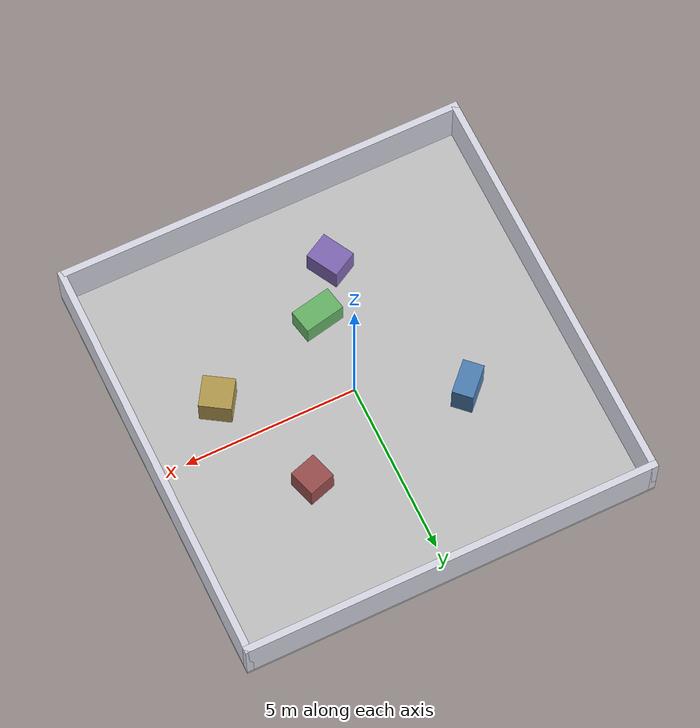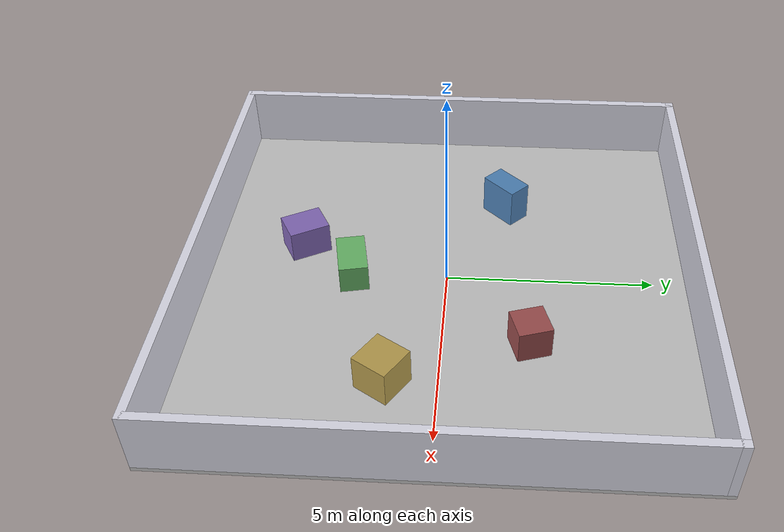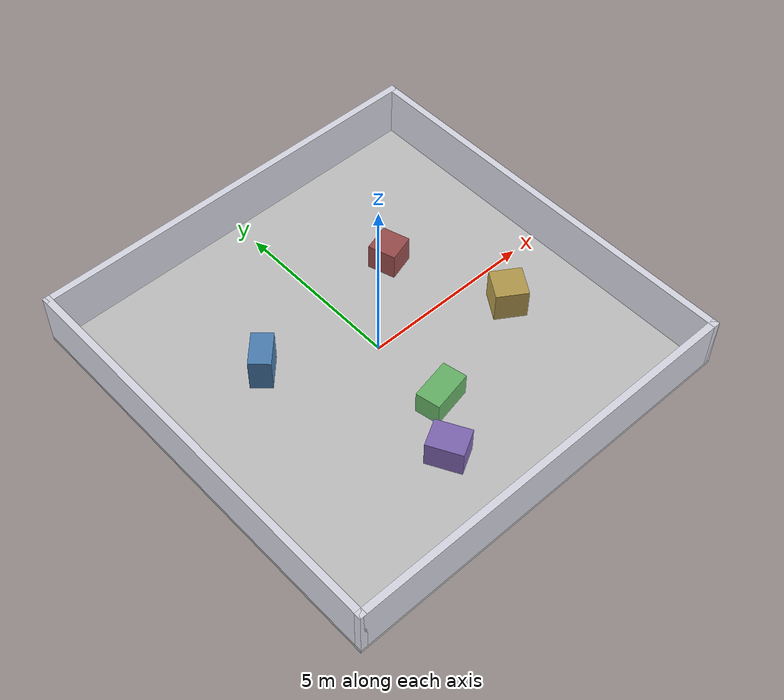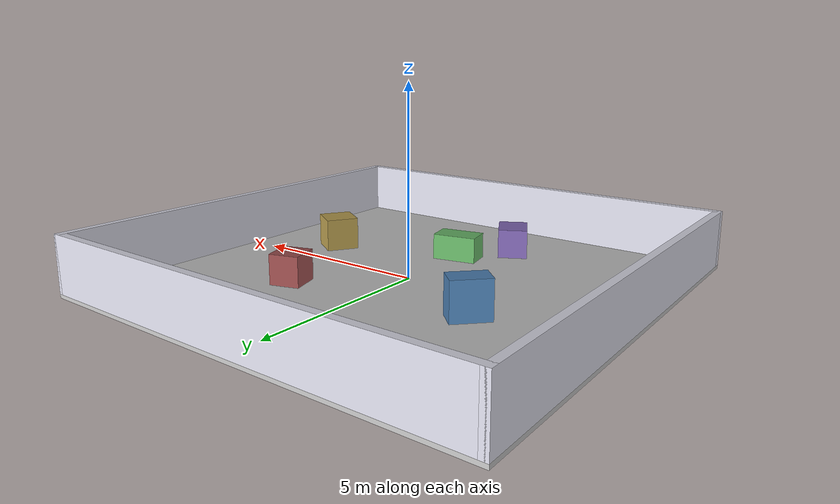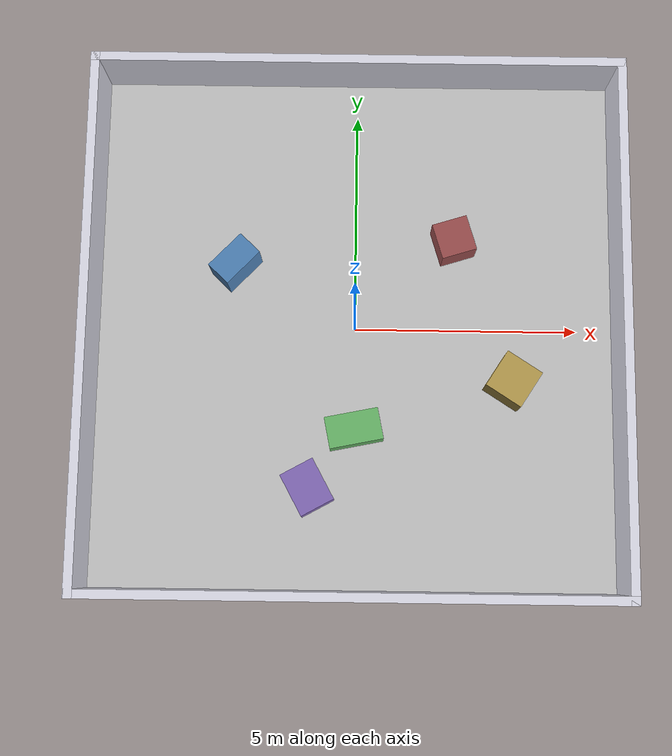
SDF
<?xml version="1.0" ?>
<sdf version="1.6">
  <world name="warehouse_boxes">

    <include>
      <uri>model://sun</uri>
    </include>

    <scene>
      <ambient>0.8 0.8 0.8 1</ambient>
      <background>0.95 0.95 0.95 1</background>
      <shadows>true</shadows>
    </scene>

    <physics type="ode">
      <max_step_size>0.001</max_step_size>
      <real_time_update_rate>1000</real_time_update_rate>
    </physics>

    <!-- floor -->
    <model name="floor">
      <static>true</static>
      <link name="link">
        <collision name="collision">
          <geometry>
            <box><size>12 12 0.1</size></box>
          </geometry>
          <pose>0 0 -0.05 0 0 0</pose>
        </collision>
        <visual name="visual">
          <geometry>
            <box><size>12 12 0.1</size></box>
          </geometry>
          <pose>0 0 -0.05 0 0 0</pose>
          <material>
            <ambient>0.75 0.75 0.75 1</ambient>
            <diffuse>0.75 0.75 0.75 1</diffuse>
          </material>
        </visual>
      </link>
    </model>

    <!-- surrounding walls -->
    <model name="north_wall">
      <static>true</static>
      <pose>0 5.9 0.75 0 0 0</pose>
      <link name="link">
        <collision name="collision">
          <geometry><box><size>12 0.2 1.5</size></box></geometry>
        </collision>
        <visual name="visual">
          <geometry><box><size>12 0.2 1.5</size></box></geometry>
          <material>
            <ambient>0.85 0.85 0.9 1</ambient>
            <diffuse>0.85 0.85 0.9 1</diffuse>
          </material>
        </visual>
      </link>
    </model>

    <model name="south_wall">
      <static>true</static>
      <pose>0 -5.9 0.75 0 0 0</pose>
      <link name="link">
        <collision name="collision">
          <geometry><box><size>12 0.2 1.5</size></box></geometry>
        </collision>
        <visual name="visual">
          <geometry><box><size>12 0.2 1.5</size></box></geometry>
          <material>
            <ambient>0.85 0.85 0.9 1</ambient>
            <diffuse>0.85 0.85 0.9 1</diffuse>
          </material>
        </visual>
      </link>
    </model>

    <model name="east_wall">
      <static>true</static>
      <pose>5.9 0 0.75 0 0 1.5708</pose>
      <link name="link">
        <collision name="collision">
          <geometry><box><size>12 0.2 1.5</size></box></geometry>
        </collision>
        <visual name="visual">
          <geometry><box><size>12 0.2 1.5</size></box></geometry>
          <material>
            <ambient>0.85 0.85 0.9 1</ambient>
            <diffuse>0.85 0.85 0.9 1</diffuse>
          </material>
        </visual>
      </link>
    </model>

    <model name="west_wall">
      <static>true</static>
      <pose>-5.9 0 0.75 0 0 1.5708</pose>
      <link name="link">
        <collision name="collision">
          <geometry><box><size>12 0.2 1.5</size></box></geometry>
        </collision>
        <visual name="visual">
          <geometry><box><size>12 0.2 1.5</size></box></geometry>
          <material>
            <ambient>0.85 0.85 0.9 1</ambient>
            <diffuse>0.85 0.85 0.9 1</diffuse>
          </material>
        </visual>
      </link>
    </model>

    <!-- randomly placed boxes -->
    <model name="box_1">
      <static>true</static>
      <pose>2.2 2.0 0.4 0 0 0.3</pose>
      <link name="link">
        <collision name="collision">
          <geometry><box><size>0.8 0.8 0.8</size></box></geometry>
        </collision>
        <visual name="visual">
          <geometry><box><size>0.8 0.8 0.8</size></box></geometry>
          <material>
            <ambient>0.6 0.3 0.3 1</ambient>
            <diffuse>0.6 0.3 0.3 1</diffuse>
          </material>
        </visual>
      </link>
    </model>

    <model name="box_2">
      <static>true</static>
      <pose>-2.7 1.4 0.5 0 0 0.8</pose>
      <link name="link">
        <collision name="collision">
          <geometry><box><size>1.0 0.6 1.0</size></box></geometry>
        </collision>
        <visual name="visual">
          <geometry><box><size>1.0 0.6 1.0</size></box></geometry>
          <material>
            <ambient>0.3 0.5 0.7 1</ambient>
            <diffuse>0.3 0.5 0.7 1</diffuse>
          </material>
        </visual>
      </link>
    </model>

    <model name="box_3">
      <static>true</static>
      <pose>0.0 -2.3 0.35 0 0 0.2</pose>
      <link name="link">
        <collision name="collision">
          <geometry><box><size>1.2 0.7 0.7</size></box></geometry>
        </collision>
        <visual name="visual">
          <geometry><box><size>1.2 0.7 0.7</size></box></geometry>
          <material>
            <ambient>0.4 0.7 0.4 1</ambient>
            <diffuse>0.4 0.7 0.4 1</diffuse>
          </material>
        </visual>
      </link>
    </model>

    <model name="box_4">
      <static>true</static>
      <pose>3.5 -1.2 0.45 0 0 1.0</pose>
      <link name="link">
        <collision name="collision">
          <geometry><box><size>0.9 0.9 0.9</size></box></geometry>
        </collision>
        <visual name="visual">
          <geometry><box><size>0.9 0.9 0.9</size></box></geometry>
          <material>
            <ambient>0.7 0.6 0.3 1</ambient>
            <diffuse>0.7 0.6 0.3 1</diffuse>
          </material>
        </visual>
      </link>
    </model>

    <model name="box_5">
      <static>true</static>
      <pose>-1.0 -3.6 0.4 0 0 0.5</pose>
      <link name="link">
        <collision name="collision">
          <geometry><box><size>0.8 1.0 0.8</size></box></geometry>
        </collision>
        <visual name="visual">
          <geometry><box><size>0.8 1.0 0.8</size></box></geometry>
          <material>
            <ambient>0.5 0.4 0.7 1</ambient>
            <diffuse>0.5 0.4 0.7 1</diffuse>
          </material>
        </visual>
      </link>
    </model>

  </world>
</sdf>
